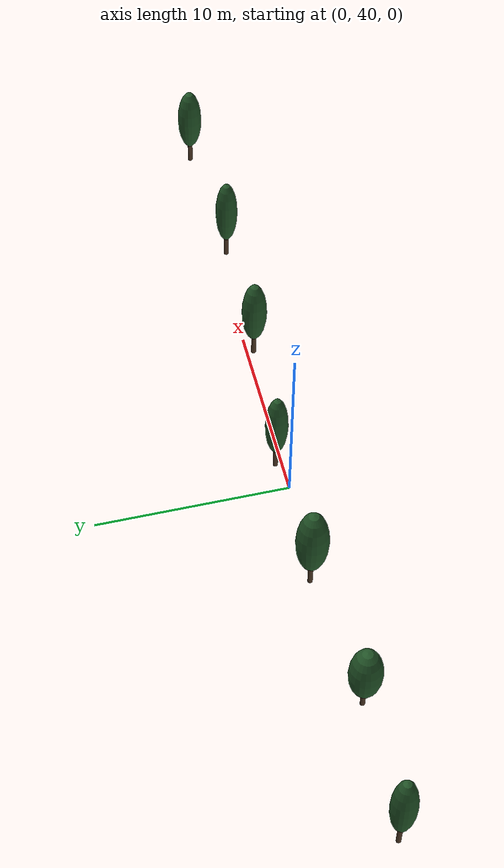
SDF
<sdf version="1.9">
 <world name="orchard_10x41">
  <model name="windbreak_N">
   <static>true</static>
   <link name="link">
    <visual name="wb_trunk_1">
     <pose>-19.750 40.068 0.711 0.0000 0.0000 0.0000</pose>
     <geometry><cylinder><radius>0.1200</radius><length>1.2308</length></cylinder></geometry>
     <material>
      <ambient>0.280 0.200 0.130 1</ambient>
      <diffuse>0.308 0.220 0.143 1</diffuse>
      <specular>0.084 0.060 0.039 1</specular>
     </material>
     <plugin filename="gz-sim-label-system" name="gz::sim::systems::Label"><label>63</label></plugin>
    </visual>
    <visual name="wb_crown_2">
     <pose>-19.750 40.068 3.508 0.0000 0.0000 0.0000</pose>
     <geometry><ellipsoid><radii>0.6363 0.6363 2.1818</radii></ellipsoid></geometry>
     <material>
      <ambient>0.120 0.300 0.140 1</ambient>
      <diffuse>0.132 0.330 0.154 1</diffuse>
      <specular>0.036 0.090 0.042 1</specular>
     </material>
     <plugin filename="gz-sim-label-system" name="gz::sim::systems::Label"><label>63</label></plugin>
    </visual>
    <visual name="wb_trunk_3">
     <pose>-13.167 39.925 1.392 0.0000 0.0000 0.0000</pose>
     <geometry><cylinder><radius>0.1200</radius><length>0.9902</length></cylinder></geometry>
     <material>
      <ambient>0.280 0.200 0.130 1</ambient>
      <diffuse>0.308 0.220 0.143 1</diffuse>
      <specular>0.084 0.060 0.039 1</specular>
     </material>
     <plugin filename="gz-sim-label-system" name="gz::sim::systems::Label"><label>63</label></plugin>
    </visual>
    <visual name="wb_crown_4">
     <pose>-13.167 39.925 3.643 0.0000 0.0000 0.0000</pose>
     <geometry><ellipsoid><radii>0.8151 0.8151 1.7553</radii></ellipsoid></geometry>
     <material>
      <ambient>0.120 0.300 0.140 1</ambient>
      <diffuse>0.132 0.330 0.154 1</diffuse>
      <specular>0.036 0.090 0.042 1</specular>
     </material>
     <plugin filename="gz-sim-label-system" name="gz::sim::systems::Label"><label>63</label></plugin>
    </visual>
    <visual name="wb_trunk_5">
     <pose>-6.583 40.711 2.194 0.0000 0.0000 0.0000</pose>
     <geometry><cylinder><radius>0.1200</radius><length>1.2089</length></cylinder></geometry>
     <material>
      <ambient>0.280 0.200 0.130 1</ambient>
      <diffuse>0.308 0.220 0.143 1</diffuse>
      <specular>0.084 0.060 0.039 1</specular>
     </material>
     <plugin filename="gz-sim-label-system" name="gz::sim::systems::Label"><label>63</label></plugin>
    </visual>
    <visual name="wb_crown_6">
     <pose>-6.583 40.711 4.942 0.0000 0.0000 0.0000</pose>
     <geometry><ellipsoid><radii>0.8023 0.8023 2.1431</radii></ellipsoid></geometry>
     <material>
      <ambient>0.120 0.300 0.140 1</ambient>
      <diffuse>0.132 0.330 0.154 1</diffuse>
      <specular>0.036 0.090 0.042 1</specular>
     </material>
     <plugin filename="gz-sim-label-system" name="gz::sim::systems::Label"><label>63</label></plugin>
    </visual>
    <visual name="wb_trunk_7">
     <pose>0.000 40.775 2.838 0.0000 0.0000 0.0000</pose>
     <geometry><cylinder><radius>0.1200</radius><length>1.1371</length></cylinder></geometry>
     <material>
      <ambient>0.280 0.200 0.130 1</ambient>
      <diffuse>0.308 0.220 0.143 1</diffuse>
      <specular>0.084 0.060 0.039 1</specular>
     </material>
     <plugin filename="gz-sim-label-system" name="gz::sim::systems::Label"><label>63</label></plugin>
    </visual>
    <visual name="wb_crown_8">
     <pose>0.000 40.775 5.423 0.0000 0.0000 0.0000</pose>
     <geometry><ellipsoid><radii>0.5635 0.5635 2.0158</radii></ellipsoid></geometry>
     <material>
      <ambient>0.120 0.300 0.140 1</ambient>
      <diffuse>0.132 0.330 0.154 1</diffuse>
      <specular>0.036 0.090 0.042 1</specular>
     </material>
     <plugin filename="gz-sim-label-system" name="gz::sim::systems::Label"><label>63</label></plugin>
    </visual>
    <visual name="wb_trunk_9">
     <pose>6.583 40.286 3.727 0.0000 0.0000 0.0000</pose>
     <geometry><cylinder><radius>0.1200</radius><length>1.1067</length></cylinder></geometry>
     <material>
      <ambient>0.280 0.200 0.130 1</ambient>
      <diffuse>0.308 0.220 0.143 1</diffuse>
      <specular>0.084 0.060 0.039 1</specular>
     </material>
     <plugin filename="gz-sim-label-system" name="gz::sim::systems::Label"><label>63</label></plugin>
    </visual>
    <visual name="wb_crown_10">
     <pose>6.583 40.286 6.243 0.0000 0.0000 0.0000</pose>
     <geometry><ellipsoid><radii>0.6298 0.6298 1.9619</radii></ellipsoid></geometry>
     <material>
      <ambient>0.120 0.300 0.140 1</ambient>
      <diffuse>0.132 0.330 0.154 1</diffuse>
      <specular>0.036 0.090 0.042 1</specular>
     </material>
     <plugin filename="gz-sim-label-system" name="gz::sim::systems::Label"><label>63</label></plugin>
    </visual>
    <visual name="wb_trunk_11">
     <pose>13.167 40.168 4.132 0.0000 0.0000 0.0000</pose>
     <geometry><cylinder><radius>0.1200</radius><length>1.1245</length></cylinder></geometry>
     <material>
      <ambient>0.280 0.200 0.130 1</ambient>
      <diffuse>0.308 0.220 0.143 1</diffuse>
      <specular>0.084 0.060 0.039 1</specular>
     </material>
     <plugin filename="gz-sim-label-system" name="gz::sim::systems::Label"><label>63</label></plugin>
    </visual>
    <visual name="wb_crown_12">
     <pose>13.167 40.168 6.688 0.0000 0.0000 0.0000</pose>
     <geometry><ellipsoid><radii>0.5637 0.5637 1.9934</radii></ellipsoid></geometry>
     <material>
      <ambient>0.120 0.300 0.140 1</ambient>
      <diffuse>0.132 0.330 0.154 1</diffuse>
      <specular>0.036 0.090 0.042 1</specular>
     </material>
     <plugin filename="gz-sim-label-system" name="gz::sim::systems::Label"><label>63</label></plugin>
    </visual>
    <visual name="wb_trunk_13">
     <pose>19.750 40.650 4.824 0.0000 0.0000 0.0000</pose>
     <geometry><cylinder><radius>0.1200</radius><length>1.0613</length></cylinder></geometry>
     <material>
      <ambient>0.280 0.200 0.130 1</ambient>
      <diffuse>0.308 0.220 0.143 1</diffuse>
      <specular>0.084 0.060 0.039 1</specular>
     </material>
     <plugin filename="gz-sim-label-system" name="gz::sim::systems::Label"><label>63</label></plugin>
    </visual>
    <visual name="wb_crown_14">
     <pose>19.750 40.650 7.236 0.0000 0.0000 0.0000</pose>
     <geometry><ellipsoid><radii>0.6205 0.6205 1.8814</radii></ellipsoid></geometry>
     <material>
      <ambient>0.120 0.300 0.140 1</ambient>
      <diffuse>0.132 0.330 0.154 1</diffuse>
      <specular>0.036 0.090 0.042 1</specular>
     </material>
     <plugin filename="gz-sim-label-system" name="gz::sim::systems::Label"><label>63</label></plugin>
    </visual>
    <collision name="c0">
     <pose>-19.750 40.068 2.893 0.0000 0.0000 0.0000</pose>
     <geometry><cylinder><radius>0.1500</radius><length>5.5944</length></cylinder></geometry>
    </collision>
    <collision name="c1">
     <pose>-13.167 39.925 3.148 0.0000 0.0000 0.0000</pose>
     <geometry><cylinder><radius>0.1500</radius><length>4.5009</length></cylinder></geometry>
    </collision>
    <collision name="c2">
     <pose>-6.583 40.711 4.337 0.0000 0.0000 0.0000</pose>
     <geometry><cylinder><radius>0.1500</radius><length>5.4952</length></cylinder></geometry>
    </collision>
    <collision name="c3">
     <pose>0.000 40.775 4.854 0.0000 0.0000 0.0000</pose>
     <geometry><cylinder><radius>0.1500</radius><length>5.1687</length></cylinder></geometry>
    </collision>
    <collision name="c4">
     <pose>6.583 40.286 5.689 0.0000 0.0000 0.0000</pose>
     <geometry><cylinder><radius>0.1500</radius><length>5.0306</length></cylinder></geometry>
    </collision>
    <collision name="c5">
     <pose>13.167 40.168 6.126 0.0000 0.0000 0.0000</pose>
     <geometry><cylinder><radius>0.1500</radius><length>5.1113</length></cylinder></geometry>
    </collision>
    <collision name="c6">
     <pose>19.750 40.650 6.705 0.0000 0.0000 0.0000</pose>
     <geometry><cylinder><radius>0.1500</radius><length>4.8240</length></cylinder></geometry>
    </collision>
   </link>
  </model>
 </world>
</sdf>
